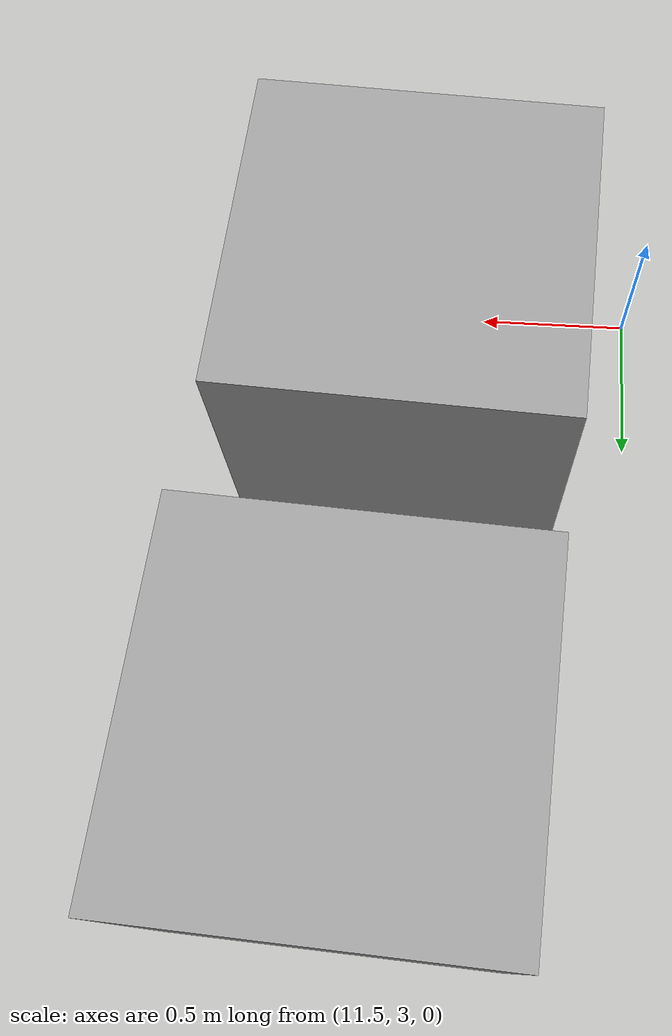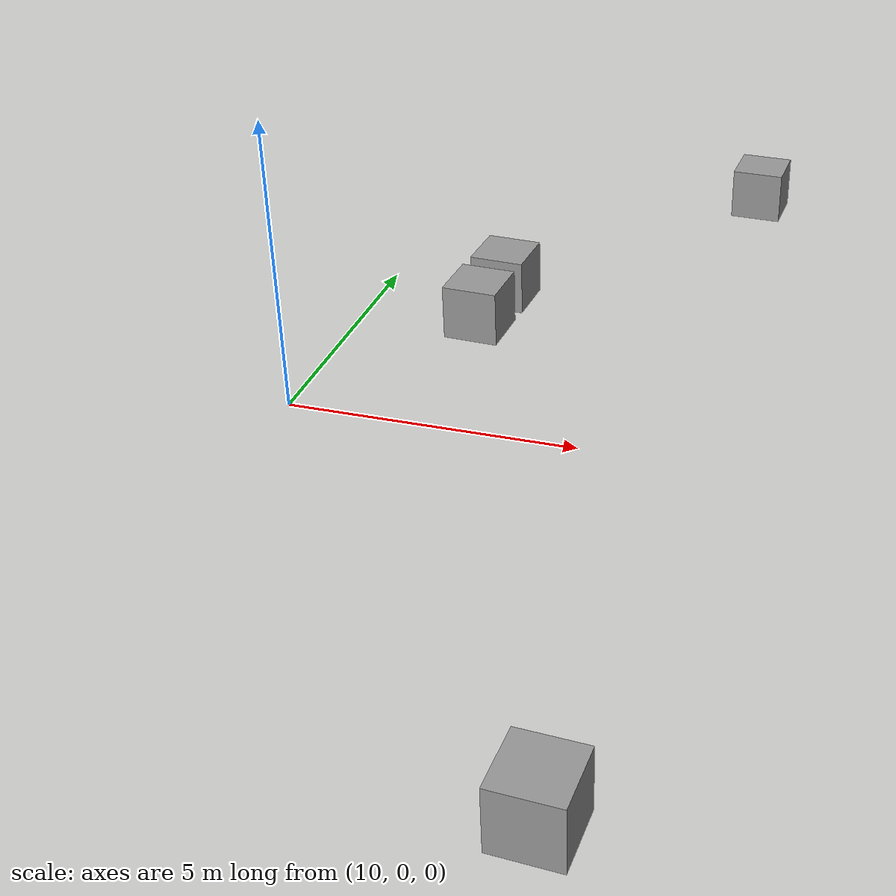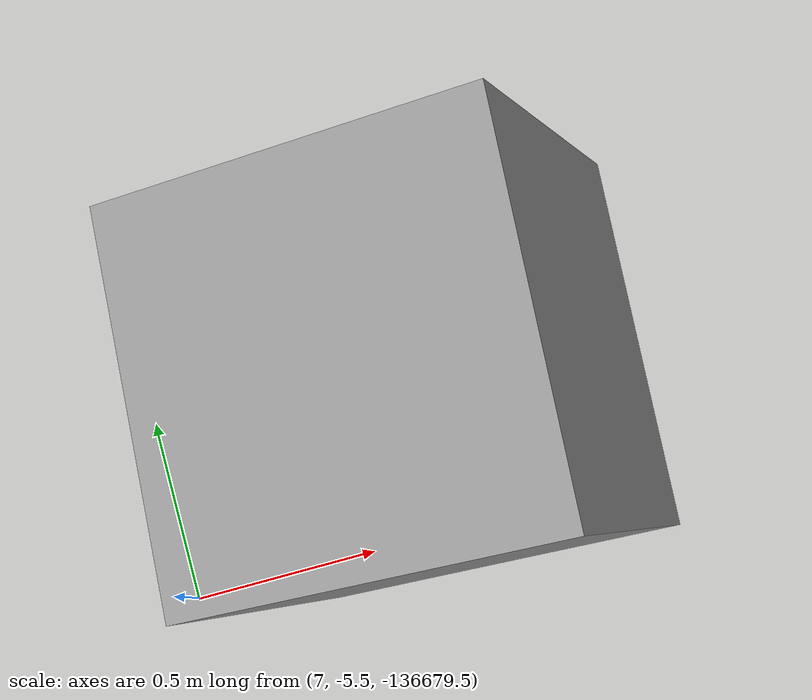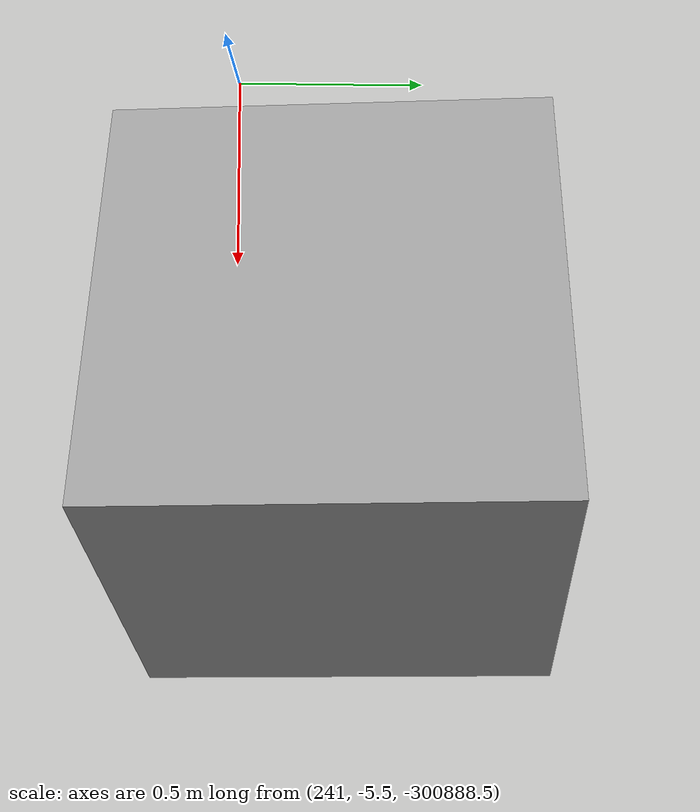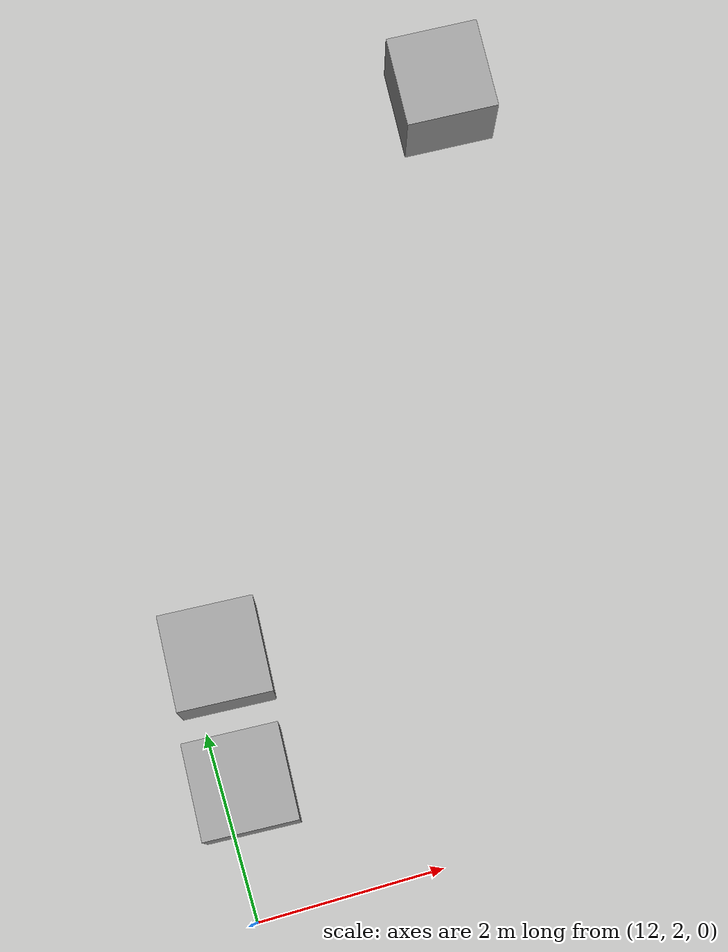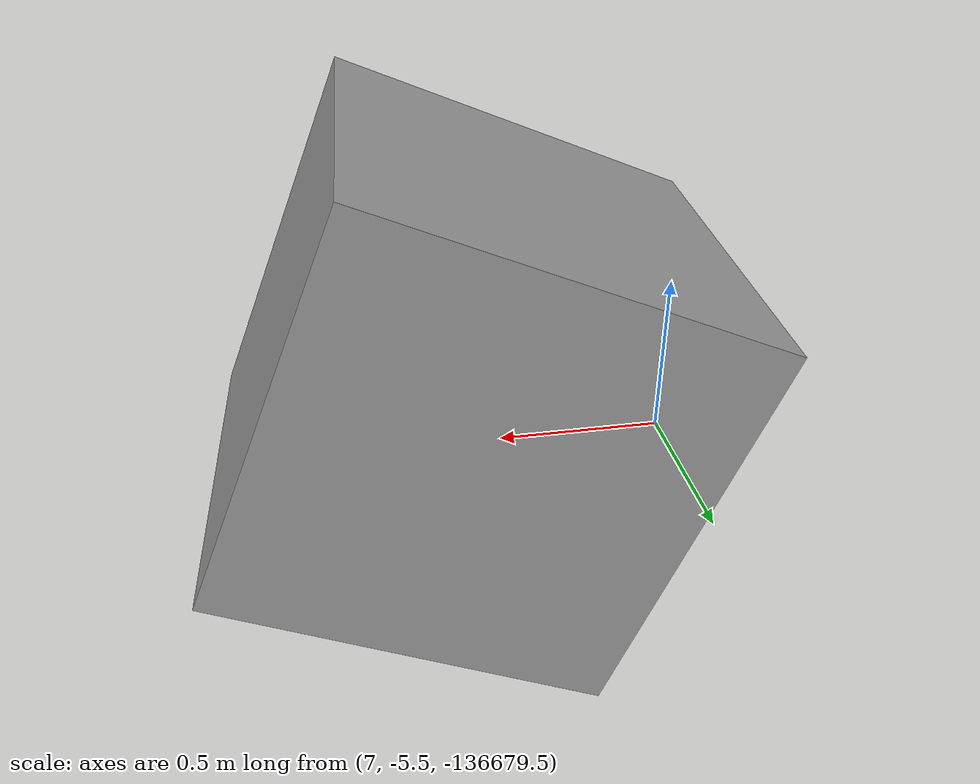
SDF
<sdf version="1.6">
 <world name="default">
  <light name="sun" type="directional">
   <cast_shadows>0</cast_shadows>
   <pose>0 0 10 0 -0 0</pose>
   <diffuse>0.8 0.8 0.8 1</diffuse>
   <specular>0.1 0.1 0.1 1</specular>
   <attenuation>
    <range>1000</range>
    <constant>0.9</constant>
    <linear>0.01</linear>
    <quadratic>0.001</quadratic>
   </attenuation>
   <direction>-0.5 0.5 -1</direction>
  </light>
  <gravity>0 0 -9.8</gravity>
  <magnetic_field>6e-06 2.3e-05 -4.2e-05</magnetic_field>
  <atmosphere type="adiabatic"/>
  <physics name="default_physics" default="0" type="ode">
   <max_step_size>0.001</max_step_size>
   <real_time_factor>1</real_time_factor>
   <real_time_update_rate>1000</real_time_update_rate>
  </physics>
  <scene><ambient>0.4 0.4 0.4 1</ambient><background>0.7 0.7 0.7 1</background><shadows>1</shadows></scene>
  <spherical_coordinates>
   <surface_model>EARTH_WGS84</surface_model>
   <latitude_deg>0</latitude_deg>
   <longitude_deg>0</longitude_deg>
   <elevation>0</elevation>
   <heading_deg>0</heading_deg>
  </spherical_coordinates>
  <model name="unit_box_clone">
   <pose>12.3336 4.6871 0.500001 -1e-06 4e-06 -0.054538</pose>
   <link name="link">
    <inertial>
     <mass>1</mass>
     <inertia>
      <ixx>0.166667</ixx>
      <ixy>0</ixy>
      <ixz>0</ixz>
      <iyy>0.166667</iyy>
      <iyz>0</iyz>
      <izz>0.166667</izz>
     </inertia>
    </inertial>
    <collision name="collision"><geometry><box><size>1 1 1</size></box></geometry></collision>
    <visual name="visual">
     <geometry><box><size>1 1 1</size></box></geometry>
     <material>
      <script><name>Gazebo/Grey</name><uri>file://media/materials/scripts/gazebo.material</uri></script>
     </material>
    </visual>
   </link>
  </model>
  <model name="unit_box_clone_clone">
   <pose>12.2402 3.37998 0.5 -0 -0 -0.047863</pose>
   <link name="link">
    <inertial>
     <mass>1</mass>
     <inertia>
      <ixx>0.166667</ixx>
      <ixy>0</ixy>
      <ixz>0</ixz>
      <iyy>0.166667</iyy>
      <iyz>0</iyz>
      <izz>0.166667</izz>
     </inertia>
    </inertial>
    <collision name="collision"><geometry><box><size>1 1 1</size></box></geometry></collision>
    <visual name="visual">
     <geometry><box><size>1 1 1</size></box></geometry>
     <material>
      <script><name>Gazebo/Grey</name><uri>file://media/materials/scripts/gazebo.material</uri></script>
     </material>
    </visual>
   </link>
  </model>
  <model name="unit_box_clone_clone_0">
   <pose>7.68034 -5.11188 -136679 1.57079 -0.375821 -0.059423</pose>
   <link name="link">
    <inertial>
     <mass>1</mass>
     <inertia>
      <ixx>0.166667</ixx>
      <ixy>0</ixy>
      <ixz>0</ixz>
      <iyy>0.166667</iyy>
      <iyz>0</iyz>
      <izz>0.166667</izz>
     </inertia>
    </inertial>
    <collision name="collision"><geometry><box><size>1 1 1</size></box></geometry></collision>
    <visual name="visual">
     <geometry><box><size>1 1 1</size></box></geometry>
     <material>
      <script><name>Gazebo/Grey</name><uri>file://media/materials/scripts/gazebo.material</uri></script>
     </material>
    </visual>
   </link>
  </model>
  <model name="unit_box_clone_clone_1">
   <pose>241.886 -5.2157 -300888 3.03288 -1.06591 -3.02062</pose>
   <link name="link">
    <inertial>
     <mass>1</mass>
     <inertia>
      <ixx>0.166667</ixx>
      <ixy>0</ixy>
      <ixz>0</ixz>
      <iyy>0.166667</iyy>
      <iyz>0</iyz>
      <izz>0.166667</izz>
     </inertia>
    </inertial>
    <collision name="collision"><geometry><box><size>1 1 1</size></box></geometry></collision>
    <visual name="visual">
     <geometry><box><size>1 1 1</size></box></geometry>
     <material>
      <script><name>Gazebo/Grey</name><uri>file://media/materials/scripts/gazebo.material</uri></script>
     </material>
    </visual>
   </link>
  </model>
  <model name="unit_box_clone_clone_clone">
   <pose>16.6473 -7.75903 0.500003 7e-06 -1.2e-05 -0.047828</pose>
   <link name="link">
    <inertial>
     <mass>1</mass>
     <inertia>
      <ixx>0.166667</ixx>
      <ixy>0</ixy>
      <ixz>0</ixz>
      <iyy>0.166667</iyy>
      <iyz>0</iyz>
      <izz>0.166667</izz>
     </inertia>
    </inertial>
    <collision name="collision"><geometry><box><size>1 1 1</size></box></geometry></collision>
    <visual name="visual">
     <geometry><box><size>1 1 1</size></box></geometry>
     <material>
      <script><name>Gazebo/Grey</name><uri>file://media/materials/scripts/gazebo.material</uri></script>
     </material>
    </visual>
   </link>
  </model>
  <model name="unit_box_clone_clone_clone_clone">
   <pose>16.3124 10.0318 0.5 0 0 -0.047845</pose>
   <link name="link">
    <inertial>
     <mass>1</mass>
     <inertia>
      <ixx>0.166667</ixx>
      <ixy>0</ixy>
      <ixz>0</ixz>
      <iyy>0.166667</iyy>
      <iyz>0</iyz>
      <izz>0.166667</izz>
     </inertia>
    </inertial>
    <collision name="collision"><geometry><box><size>1 1 1</size></box></geometry></collision>
    <visual name="visual">
     <geometry><box><size>1 1 1</size></box></geometry>
     <material>
      <script><name>Gazebo/Grey</name><uri>file://media/materials/scripts/gazebo.material</uri></script>
     </material>
    </visual>
   </link>
  </model>
 </world>
</sdf>
